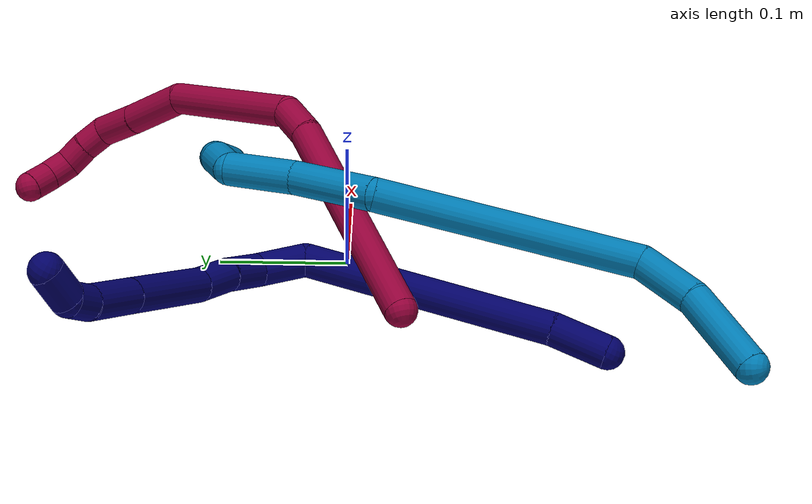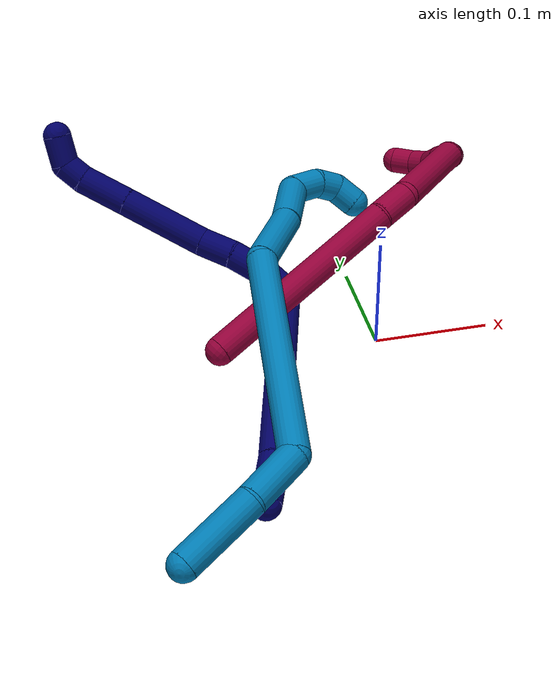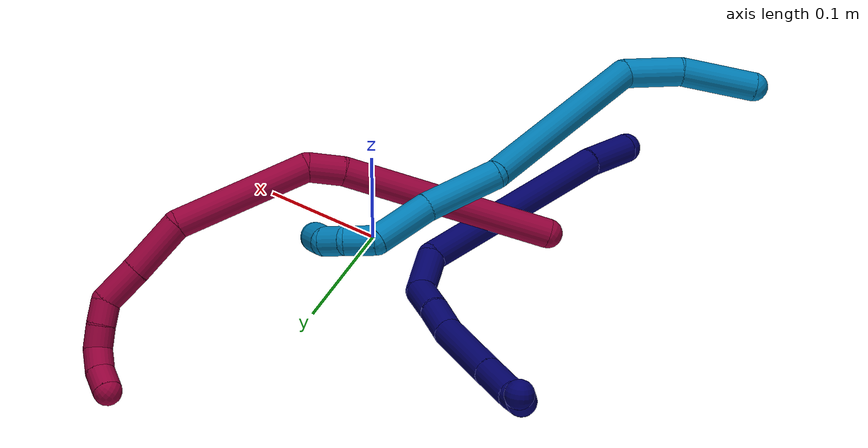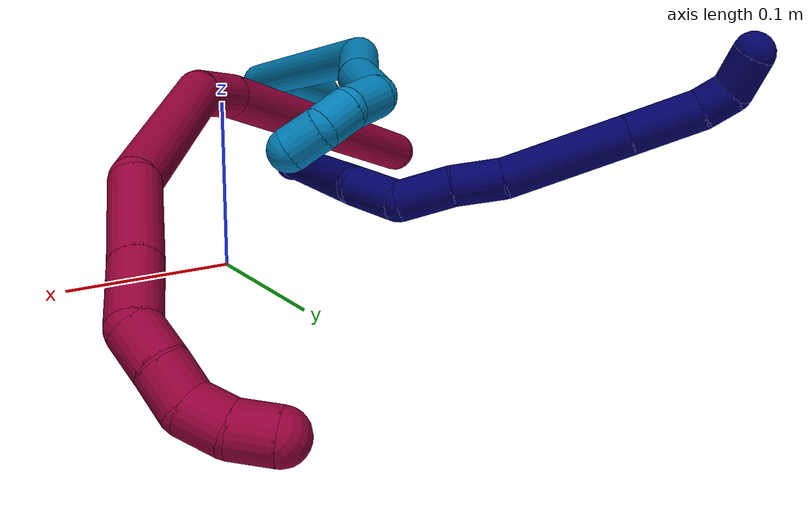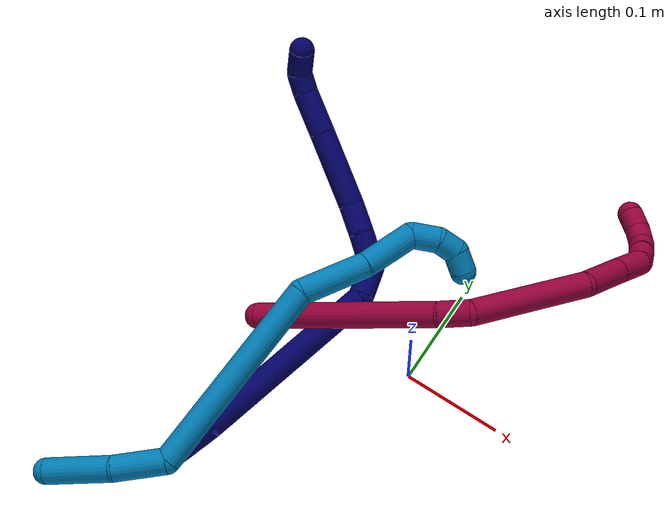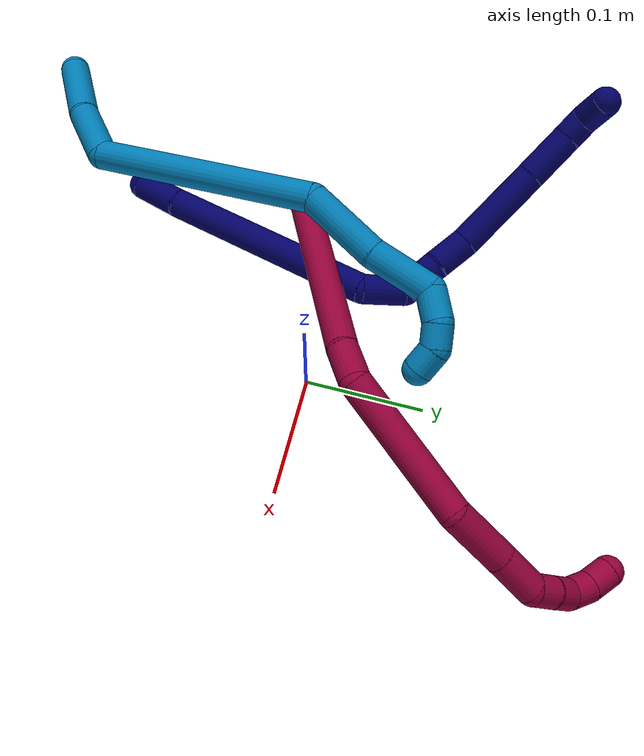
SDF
<sdf version="1.7">
 <world name="default">
  <model name="photoneo_s_sensor">
   <static>1</static>
   <pose>0 0 2 1.57079 1.57079 3.14159</pose>
   <link name="link">
    <inertial><mass>0.1</mass></inertial>
    <sensor name="sensor" type="depth">
     <update_rate>30</update_rate>
     <camera>
      <horizontal_fov>1.22</horizontal_fov>
      <image><width>1920</width><height>1200</height><format>B8G8R8</format></image>
      <clip><near>0.1</near><far>4</far></clip>
      <depth_camera><output>points</output></depth_camera>
     </camera>
     <plugin name="camera_plugin" filename="libgazebo_ros_depth_camera.so">
      <baseline>0.2</baseline>
      <alwaysOn>1</alwaysOn>
      <updateRate>0.0</updateRate>
      <cameraName>camera_ir</cameraName>
      <imageTopicName>/camera/color/image_raw</imageTopicName>
      <cameraInfoTopicName>/camera/color/camera_info</cameraInfoTopicName>
      <depthImageTopicName>/camera/depth/image_raw</depthImageTopicName>
      <depthImageCameraInfoTopicName>/camera/depth/camera_info</depthImageCameraInfoTopicName>
      <pointCloudTopicName>/camera/depth/points</pointCloudTopicName>
      <frameName>fr_optical</frameName>
      <pointCloudCutoff>0.1</pointCloudCutoff>
      <pointCloudCutoffMax>2.0</pointCloudCutoffMax>
      <distortionK1>0</distortionK1>
      <distortionK2>0</distortionK2>
      <distortionK3>0</distortionK3>
      <distortionT1>0</distortionT1>
      <distortionT2>0</distortionT2>
      <CxPrime>0</CxPrime>
      <Cx>0</Cx>
      <Cy>0</Cy>
      <focalLength>0</focalLength>
      <hackBaseline>0</hackBaseline>
     </plugin>
    </sensor>
   </link>
  </model>
  <model name="bin">
   <static>1</static>
   <link name="bottom">
    <collision name="collision-bottom">
     <pose>0 0 -0.01 0 -0 0</pose>
     <geometry><box><size>0.8 0.6 0.02</size></box></geometry>
     <surface>
      <friction><ode><mu>100</mu><mu2>100</mu2></ode></friction>
      <contact><collide_bitmask>65535</collide_bitmask></contact>
     </surface>
    </collision>
   </link>
   <link name="west_wall">
    <collision name="collision-west_wall">
     <pose>-0.41 0 0.1 0 -0 0</pose>
     <geometry><box><size>0.02 0.6 0.2</size></box></geometry>
     <surface>
      <friction><ode><mu>100</mu><mu2>100</mu2></ode></friction>
      <contact><collide_bitmask>65535</collide_bitmask></contact>
     </surface>
    </collision>
   </link>
   <link name="east_wall">
    <collision name="collision-east_wall">
     <pose>0.41 0 0.1 0 -0 0</pose>
     <geometry><box><size>0.02 0.6 0.2</size></box></geometry>
     <surface>
      <friction><ode><mu>100</mu><mu2>100</mu2></ode></friction>
      <contact><collide_bitmask>65535</collide_bitmask></contact>
     </surface>
    </collision>
   </link>
   <link name="south_wall">
    <collision name="collision-south_wall">
     <pose>0 -0.31 0.1 0 -0 0</pose>
     <geometry><box><size>0.8 0.02 0.2</size></box></geometry>
     <surface>
      <friction><ode><mu>100</mu><mu2>100</mu2></ode></friction>
      <contact><collide_bitmask>65535</collide_bitmask></contact>
     </surface>
    </collision>
   </link>
   <link name="north_wall">
    <collision name="collision-north_wall">
     <pose>0 0.31 0.1 0 -0 0</pose>
     <geometry><box><size>0.8 0.02 0.2</size></box></geometry>
     <surface>
      <friction><ode><mu>100</mu><mu2>100</mu2></ode></friction>
      <contact><collide_bitmask>65535</collide_bitmask></contact>
     </surface>
    </collision>
   </link>
  </model>
  <model name="7">
   <static>0</static>
   <link name="7">
    <collision name="collision-cylinder-e_1_1_4">
     <pose>0.004671 0.020482 -0.003588 -1.74421 0.220973 -0.262603</pose>
     <geometry><cylinder><radius>0.0125</radius><length>0.042625</length></cylinder></geometry>
     <surface>
      <friction><ode><mu>1.16</mu><mu2>1.16</mu2><slip1>0</slip1><slip2>0</slip2></ode></friction>
      <contact><ode><kp>1e+06</kp><kd>1</kd><max_vel>0</max_vel><min_depth>0.001</min_depth></ode></contact>
     </surface>
    </collision>
    <visual name="visual-cylinder-e_1_1_4">
     <pose>0.004671 0.020482 -0.003588 -1.74421 0.220973 -0.262603</pose>
     <geometry><cylinder><radius>0.0125</radius><length>0.042625</length></cylinder></geometry>
     <material><ambient>0.003922 0 0.403922 1</ambient></material>
    </visual>
    <collision name="collision-cylinder-e_2_4_5">
     <pose>0.024322 0.130298 -0.034326 -1.86584 0.159078 -0.214239</pose>
     <geometry><cylinder><radius>0.0125</radius><length>0.189124</length></cylinder></geometry>
     <surface>
      <friction><ode><mu>1.16</mu><mu2>1.16</mu2><slip1>0</slip1><slip2>0</slip2></ode></friction>
      <contact><ode><kp>1e+06</kp><kd>1</kd><max_vel>0</max_vel><min_depth>0.001</min_depth></ode></contact>
     </surface>
    </collision>
    <visual name="visual-cylinder-e_2_4_5">
     <pose>0.024322 0.130298 -0.034326 -1.86584 0.159078 -0.214239</pose>
     <geometry><cylinder><radius>0.0125</radius><length>0.189124</length></cylinder></geometry>
     <material><ambient>0.003922 0 0.403922 1</ambient></material>
    </visual>
    <collision name="collision-cylinder-e_3_5_6">
     <pose>0.033658 0.233291 -0.071971 -2.22592 -0.316595 0.626582</pose>
     <geometry><cylinder><radius>0.0125</radius><length>0.036253</length></cylinder></geometry>
     <surface>
      <friction><ode><mu>1.16</mu><mu2>1.16</mu2><slip1>0</slip1><slip2>0</slip2></ode></friction>
      <contact><ode><kp>1e+06</kp><kd>1</kd><max_vel>0</max_vel><min_depth>0.001</min_depth></ode></contact>
     </surface>
    </collision>
    <visual name="visual-cylinder-e_3_5_6">
     <pose>0.033658 0.233291 -0.071971 -2.22592 -0.316595 0.626582</pose>
     <geometry><cylinder><radius>0.0125</radius><length>0.036253</length></cylinder></geometry>
     <material><ambient>0.003922 0 0.403922 1</ambient></material>
    </visual>
    <collision name="collision-cylinder-e_4_6_7">
     <pose>0.013726 0.255806 -0.084741 -1.82235 -1.00154 1.22914</pose>
     <geometry><cylinder><radius>0.0125</radius><length>0.033929</length></cylinder></geometry>
     <surface>
      <friction><ode><mu>1.16</mu><mu2>1.16</mu2><slip1>0</slip1><slip2>0</slip2></ode></friction>
      <contact><ode><kp>1e+06</kp><kd>1</kd><max_vel>0</max_vel><min_depth>0.001</min_depth></ode></contact>
     </surface>
    </collision>
    <visual name="visual-cylinder-e_4_6_7">
     <pose>0.013726 0.255806 -0.084741 -1.82235 -1.00154 1.22914</pose>
     <geometry><cylinder><radius>0.0125</radius><length>0.033929</length></cylinder></geometry>
     <material><ambient>0.003922 0 0.403922 1</ambient></material>
    </visual>
    <collision name="collision-cylinder-e_5_7_8">
     <pose>-0.01355 0.271775 -0.091033 -2.08475 -1.00933 1.5155</pose>
     <geometry><cylinder><radius>0.0125</radius><length>0.030682</length></cylinder></geometry>
     <surface>
      <friction><ode><mu>1.16</mu><mu2>1.16</mu2><slip1>0</slip1><slip2>0</slip2></ode></friction>
      <contact><ode><kp>1e+06</kp><kd>1</kd><max_vel>0</max_vel><min_depth>0.001</min_depth></ode></contact>
     </surface>
    </collision>
    <visual name="visual-cylinder-e_5_7_8">
     <pose>-0.01355 0.271775 -0.091033 -2.08475 -1.00933 1.5155</pose>
     <geometry><cylinder><radius>0.0125</radius><length>0.030682</length></cylinder></geometry>
     <material><ambient>0.003922 0 0.403922 1</ambient></material>
    </visual>
    <collision name="collision-cylinder-e_6_8_9">
     <pose>-0.060471 0.296566 -0.097745 -1.72214 -1.08581 1.22465</pose>
     <geometry><cylinder><radius>0.0125</radius><length>0.076718</length></cylinder></geometry>
     <surface>
      <friction><ode><mu>1.16</mu><mu2>1.16</mu2><slip1>0</slip1><slip2>0</slip2></ode></friction>
      <contact><ode><kp>1e+06</kp><kd>1</kd><max_vel>0</max_vel><min_depth>0.001</min_depth></ode></contact>
     </surface>
    </collision>
    <visual name="visual-cylinder-e_6_8_9">
     <pose>-0.060471 0.296566 -0.097745 -1.72214 -1.08581 1.22465</pose>
     <geometry><cylinder><radius>0.0125</radius><length>0.076718</length></cylinder></geometry>
     <material><ambient>0.003922 0 0.403922 1</ambient></material>
    </visual>
    <collision name="collision-cylinder-e_7_9_10">
     <pose>-0.113885 0.324196 -0.101925 -1.71889 -1.09401 1.23026</pose>
     <geometry><cylinder><radius>0.0125</radius><length>0.043847</length></cylinder></geometry>
     <surface>
      <friction><ode><mu>1.16</mu><mu2>1.16</mu2><slip1>0</slip1><slip2>0</slip2></ode></friction>
      <contact><ode><kp>1e+06</kp><kd>1</kd><max_vel>0</max_vel><min_depth>0.001</min_depth></ode></contact>
     </surface>
    </collision>
    <visual name="visual-cylinder-e_7_9_10">
     <pose>-0.113885 0.324196 -0.101925 -1.71889 -1.09401 1.23026</pose>
     <geometry><cylinder><radius>0.0125</radius><length>0.043847</length></cylinder></geometry>
     <material><ambient>0.003922 0 0.403922 1</ambient></material>
    </visual>
    <collision name="collision-cylinder-e_8_10_11">
     <pose>-0.141751 0.339744 -0.102219 -1.36114 -0.972081 0.80835</pose>
     <geometry><cylinder><radius>0.0125</radius><length>0.020308</length></cylinder></geometry>
     <surface>
      <friction><ode><mu>1.16</mu><mu2>1.16</mu2><slip1>0</slip1><slip2>0</slip2></ode></friction>
      <contact><ode><kp>1e+06</kp><kd>1</kd><max_vel>0</max_vel><min_depth>0.001</min_depth></ode></contact>
     </surface>
    </collision>
    <visual name="visual-cylinder-e_8_10_11">
     <pose>-0.141751 0.339744 -0.102219 -1.36114 -0.972081 0.80835</pose>
     <geometry><cylinder><radius>0.0125</radius><length>0.020308</length></cylinder></geometry>
     <material><ambient>0.003922 0 0.403922 1</ambient></material>
    </visual>
    <collision name="collision-cylinder-e_9_11_2">
     <pose>-0.155243 0.355269 -0.093876 -0.946523 -0.395237 0.204353</pose>
     <geometry><cylinder><radius>0.0125</radius><length>0.026515</length></cylinder></geometry>
     <surface>
      <friction><ode><mu>1.16</mu><mu2>1.16</mu2><slip1>0</slip1><slip2>0</slip2></ode></friction>
      <contact><ode><kp>1e+06</kp><kd>1</kd><max_vel>0</max_vel><min_depth>0.001</min_depth></ode></contact>
     </surface>
    </collision>
    <visual name="visual-cylinder-e_9_11_2">
     <pose>-0.155243 0.355269 -0.093876 -0.946523 -0.395237 0.204353</pose>
     <geometry><cylinder><radius>0.0125</radius><length>0.026515</length></cylinder></geometry>
     <material><ambient>0.003922 0 0.403922 1</ambient></material>
    </visual>
    <collision name="collision-sphere-2">
     <pose>-0.160348 0.365197 -0.086725 0 -0 0</pose>
     <geometry><sphere><radius>0.0125</radius></sphere></geometry>
     <surface>
      <friction><ode><mu>1.16</mu><mu2>1.16</mu2><slip1>0</slip1><slip2>0</slip2></ode></friction>
      <contact><ode><kp>1e+06</kp><kd>1</kd><max_vel>0</max_vel><min_depth>0.001</min_depth></ode></contact>
     </surface>
    </collision>
    <visual name="visual-sphere-2">
     <pose>-0.160348 0.365197 -0.086725 0 -0 0</pose>
     <geometry><sphere><radius>0.0125</radius></sphere></geometry>
     <material><ambient>0.003922 0 0.403922 1</ambient></material>
    </visual>
    <collision name="collision-sphere-11">
     <pose>-0.150139 0.345341 -0.101028 0 -0 0</pose>
     <geometry><sphere><radius>0.0125</radius></sphere></geometry>
     <surface>
      <friction><ode><mu>1.16</mu><mu2>1.16</mu2><slip1>0</slip1><slip2>0</slip2></ode></friction>
      <contact><ode><kp>1e+06</kp><kd>1</kd><max_vel>0</max_vel><min_depth>0.001</min_depth></ode></contact>
     </surface>
    </collision>
    <visual name="visual-sphere-11">
     <pose>-0.150139 0.345341 -0.101028 0 -0 0</pose>
     <geometry><sphere><radius>0.0125</radius></sphere></geometry>
     <material><ambient>0.003922 0 0.403922 1</ambient></material>
    </visual>
    <collision name="collision-sphere-10">
     <pose>-0.133363 0.334147 -0.10341 0 -0 0</pose>
     <geometry><sphere><radius>0.0125</radius></sphere></geometry>
     <surface>
      <friction><ode><mu>1.16</mu><mu2>1.16</mu2><slip1>0</slip1><slip2>0</slip2></ode></friction>
      <contact><ode><kp>1e+06</kp><kd>1</kd><max_vel>0</max_vel><min_depth>0.001</min_depth></ode></contact>
     </surface>
    </collision>
    <visual name="visual-sphere-10">
     <pose>-0.133363 0.334147 -0.10341 0 -0 0</pose>
     <geometry><sphere><radius>0.0125</radius></sphere></geometry>
     <material><ambient>0.003922 0 0.403922 1</ambient></material>
    </visual>
    <collision name="collision-sphere-9">
     <pose>-0.094406 0.314245 -0.100441 0 -0 0</pose>
     <geometry><sphere><radius>0.0125</radius></sphere></geometry>
     <surface>
      <friction><ode><mu>1.16</mu><mu2>1.16</mu2><slip1>0</slip1><slip2>0</slip2></ode></friction>
      <contact><ode><kp>1e+06</kp><kd>1</kd><max_vel>0</max_vel><min_depth>0.001</min_depth></ode></contact>
     </surface>
    </collision>
    <visual name="visual-sphere-9">
     <pose>-0.094406 0.314245 -0.100441 0 -0 0</pose>
     <geometry><sphere><radius>0.0125</radius></sphere></geometry>
     <material><ambient>0.003922 0 0.403922 1</ambient></material>
    </visual>
    <collision name="collision-sphere-4">
     <pose>0.009342 0.040965 -0.007176 0 -0 0</pose>
     <geometry><sphere><radius>0.0125</radius></sphere></geometry>
     <surface>
      <friction><ode><mu>1.16</mu><mu2>1.16</mu2><slip1>0</slip1><slip2>0</slip2></ode></friction>
      <contact><ode><kp>1e+06</kp><kd>1</kd><max_vel>0</max_vel><min_depth>0.001</min_depth></ode></contact>
     </surface>
    </collision>
    <visual name="visual-sphere-4">
     <pose>0.009342 0.040965 -0.007176 0 -0 0</pose>
     <geometry><sphere><radius>0.0125</radius></sphere></geometry>
     <material><ambient>0.003922 0 0.403922 1</ambient></material>
    </visual>
    <collision name="collision-sphere-1">
     <geometry><sphere><radius>0.0125</radius></sphere></geometry>
     <surface>
      <friction><ode><mu>1.16</mu><mu2>1.16</mu2><slip1>0</slip1><slip2>0</slip2></ode></friction>
      <contact><ode><kp>1e+06</kp><kd>1</kd><max_vel>0</max_vel><min_depth>0.001</min_depth></ode></contact>
     </surface>
    </collision>
    <visual name="visual-sphere-1">
     <geometry><sphere><radius>0.0125</radius></sphere></geometry>
     <material><ambient>0.003922 0 0.403922 1</ambient></material>
    </visual>
    <collision name="collision-sphere-8">
     <pose>-0.026535 0.278888 -0.095049 0 -0 0</pose>
     <geometry><sphere><radius>0.0125</radius></sphere></geometry>
     <surface>
      <friction><ode><mu>1.16</mu><mu2>1.16</mu2><slip1>0</slip1><slip2>0</slip2></ode></friction>
      <contact><ode><kp>1e+06</kp><kd>1</kd><max_vel>0</max_vel><min_depth>0.001</min_depth></ode></contact>
     </surface>
    </collision>
    <visual name="visual-sphere-8">
     <pose>-0.026535 0.278888 -0.095049 0 -0 0</pose>
     <geometry><sphere><radius>0.0125</radius></sphere></geometry>
     <material><ambient>0.003922 0 0.403922 1</ambient></material>
    </visual>
    <collision name="collision-sphere-5">
     <pose>0.039301 0.219632 -0.061476 0 -0 0</pose>
     <geometry><sphere><radius>0.0125</radius></sphere></geometry>
     <surface>
      <friction><ode><mu>1.16</mu><mu2>1.16</mu2><slip1>0</slip1><slip2>0</slip2></ode></friction>
      <contact><ode><kp>1e+06</kp><kd>1</kd><max_vel>0</max_vel><min_depth>0.001</min_depth></ode></contact>
     </surface>
    </collision>
    <visual name="visual-sphere-5">
     <pose>0.039301 0.219632 -0.061476 0 -0 0</pose>
     <geometry><sphere><radius>0.0125</radius></sphere></geometry>
     <material><ambient>0.003922 0 0.403922 1</ambient></material>
    </visual>
    <collision name="collision-sphere-6">
     <pose>0.028015 0.24695 -0.082465 0 -0 0</pose>
     <geometry><sphere><radius>0.0125</radius></sphere></geometry>
     <surface>
      <friction><ode><mu>1.16</mu><mu2>1.16</mu2><slip1>0</slip1><slip2>0</slip2></ode></friction>
      <contact><ode><kp>1e+06</kp><kd>1</kd><max_vel>0</max_vel><min_depth>0.001</min_depth></ode></contact>
     </surface>
    </collision>
    <visual name="visual-sphere-6">
     <pose>0.028015 0.24695 -0.082465 0 -0 0</pose>
     <geometry><sphere><radius>0.0125</radius></sphere></geometry>
     <material><ambient>0.003922 0 0.403922 1</ambient></material>
    </visual>
    <collision name="collision-sphere-7">
     <pose>-0.000564 0.264662 -0.087017 0 -0 0</pose>
     <geometry><sphere><radius>0.0125</radius></sphere></geometry>
     <surface>
      <friction><ode><mu>1.16</mu><mu2>1.16</mu2><slip1>0</slip1><slip2>0</slip2></ode></friction>
      <contact><ode><kp>1e+06</kp><kd>1</kd><max_vel>0</max_vel><min_depth>0.001</min_depth></ode></contact>
     </surface>
    </collision>
    <visual name="visual-sphere-7">
     <pose>-0.000564 0.264662 -0.087017 0 -0 0</pose>
     <geometry><sphere><radius>0.0125</radius></sphere></geometry>
     <material><ambient>0.003922 0 0.403922 1</ambient></material>
    </visual>
    <inertial>
     <pose>-0.021117 0.208554 -0.06291 0 -0 0</pose>
     <mass>0.5</mass>
     <inertia>
      <ixx>0.00047</ixx>
      <ixy>0</ixy>
      <ixz>0</ixz>
      <iyy>-0.000164</iyy>
      <iyz>0</iyz>
      <izz>-0.000625</izz>
     </inertia>
    </inertial>
   </link>
   <pose>-0.142093 -0.190328 0.011543 0.467158 0.229477 -0.087418</pose>
  </model>
  <model name="8">
   <static>0</static>
   <link name="8">
    <collision name="collision-cylinder-e_1_1_4">
     <pose>0.026918 0.021377 0.084486 -0.247823 0.299583 -0.03759</pose>
     <geometry><cylinder><radius>0.0125</radius><length>0.182421</length></cylinder></geometry>
     <surface>
      <friction><ode><mu>1.16</mu><mu2>1.16</mu2><slip1>0</slip1><slip2>0</slip2></ode></friction>
      <contact><ode><kp>1e+06</kp><kd>1</kd><max_vel>0</max_vel><min_depth>0.001</min_depth></ode></contact>
     </surface>
    </collision>
    <visual name="visual-cylinder-e_1_1_4">
     <pose>0.026918 0.021377 0.084486 -0.247823 0.299583 -0.03759</pose>
     <geometry><cylinder><radius>0.0125</radius><length>0.182421</length></cylinder></geometry>
     <material><ambient>0.584314 0 0.227451 1</ambient></material>
    </visual>
    <collision name="collision-cylinder-e_2_4_5">
     <pose>0.059588 0.048708 0.182176 -0.423636 0.378006 -0.082223</pose>
     <geometry><cylinder><radius>0.0125</radius><length>0.03117</length></cylinder></geometry>
     <surface>
      <friction><ode><mu>1.16</mu><mu2>1.16</mu2><slip1>0</slip1><slip2>0</slip2></ode></friction>
      <contact><ode><kp>1e+06</kp><kd>1</kd><max_vel>0</max_vel><min_depth>0.001</min_depth></ode></contact>
     </surface>
    </collision>
    <visual name="visual-cylinder-e_2_4_5">
     <pose>0.059588 0.048708 0.182176 -0.423636 0.378006 -0.082223</pose>
     <geometry><cylinder><radius>0.0125</radius><length>0.03117</length></cylinder></geometry>
     <material><ambient>0.584314 0 0.227451 1</ambient></material>
    </visual>
    <collision name="collision-cylinder-e_3_5_6">
     <pose>0.092624 0.098794 0.224035 -0.9949 0.478349 -0.263279</pose>
     <geometry><cylinder><radius>0.0125</radius><length>0.118542</length></cylinder></geometry>
     <surface>
      <friction><ode><mu>1.16</mu><mu2>1.16</mu2><slip1>0</slip1><slip2>0</slip2></ode></friction>
      <contact><ode><kp>1e+06</kp><kd>1</kd><max_vel>0</max_vel><min_depth>0.001</min_depth></ode></contact>
     </surface>
    </collision>
    <visual name="visual-cylinder-e_3_5_6">
     <pose>0.092624 0.098794 0.224035 -0.9949 0.478349 -0.263279</pose>
     <geometry><cylinder><radius>0.0125</radius><length>0.118542</length></cylinder></geometry>
     <material><ambient>0.584314 0 0.227451 1</ambient></material>
    </visual>
    <collision name="collision-cylinder-e_4_6_7">
     <pose>0.132493 0.165078 0.254323 -1.49721 0.515506 -0.480345</pose>
     <geometry><cylinder><radius>0.0125</radius><length>0.051062</length></cylinder></geometry>
     <surface>
      <friction><ode><mu>1.16</mu><mu2>1.16</mu2><slip1>0</slip1><slip2>0</slip2></ode></friction>
      <contact><ode><kp>1e+06</kp><kd>1</kd><max_vel>0</max_vel><min_depth>0.001</min_depth></ode></contact>
     </surface>
    </collision>
    <visual name="visual-cylinder-e_4_6_7">
     <pose>0.132493 0.165078 0.254323 -1.49721 0.515506 -0.480345</pose>
     <geometry><cylinder><radius>0.0125</radius><length>0.051062</length></cylinder></geometry>
     <material><ambient>0.584314 0 0.227451 1</ambient></material>
    </visual>
    <collision name="collision-cylinder-e_5_7_8">
     <pose>0.153927 0.202598 0.257825 -1.44977 0.519223 -0.462116</pose>
     <geometry><cylinder><radius>0.0125</radius><length>0.035661</length></cylinder></geometry>
     <surface>
      <friction><ode><mu>1.16</mu><mu2>1.16</mu2><slip1>0</slip1><slip2>0</slip2></ode></friction>
      <contact><ode><kp>1e+06</kp><kd>1</kd><max_vel>0</max_vel><min_depth>0.001</min_depth></ode></contact>
     </surface>
    </collision>
    <visual name="visual-cylinder-e_5_7_8">
     <pose>0.153927 0.202598 0.257825 -1.44977 0.519223 -0.462116</pose>
     <geometry><cylinder><radius>0.0125</radius><length>0.035661</length></cylinder></geometry>
     <material><ambient>0.584314 0 0.227451 1</ambient></material>
    </visual>
    <collision name="collision-cylinder-e_6_8_9">
     <pose>0.16453 0.227483 0.255877 -1.95222 0.169574 -0.250007</pose>
     <geometry><cylinder><radius>0.0125</radius><length>0.020809</length></cylinder></geometry>
     <surface>
      <friction><ode><mu>1.16</mu><mu2>1.16</mu2><slip1>0</slip1><slip2>0</slip2></ode></friction>
      <contact><ode><kp>1e+06</kp><kd>1</kd><max_vel>0</max_vel><min_depth>0.001</min_depth></ode></contact>
     </surface>
    </collision>
    <visual name="visual-cylinder-e_6_8_9">
     <pose>0.16453 0.227483 0.255877 -1.95222 0.169574 -0.250007</pose>
     <geometry><cylinder><radius>0.0125</radius><length>0.020809</length></cylinder></geometry>
     <material><ambient>0.584314 0 0.227451 1</ambient></material>
    </visual>
    <collision name="collision-cylinder-e_7_9_10">
     <pose>0.168535 0.245611 0.247395 -2.06725 0.225757 -0.376165</pose>
     <geometry><cylinder><radius>0.0125</radius><length>0.020093</length></cylinder></geometry>
     <surface>
      <friction><ode><mu>1.16</mu><mu2>1.16</mu2><slip1>0</slip1><slip2>0</slip2></ode></friction>
      <contact><ode><kp>1e+06</kp><kd>1</kd><max_vel>0</max_vel><min_depth>0.001</min_depth></ode></contact>
     </surface>
    </collision>
    <visual name="visual-cylinder-e_7_9_10">
     <pose>0.168535 0.245611 0.247395 -2.06725 0.225757 -0.376165</pose>
     <geometry><cylinder><radius>0.0125</radius><length>0.020093</length></cylinder></geometry>
     <material><ambient>0.584314 0 0.227451 1</ambient></material>
    </visual>
    <collision name="collision-cylinder-e_8_10_11">
     <pose>0.168198 0.26277 0.238168 -2.06109 -0.260756 0.430468</pose>
     <geometry><cylinder><radius>0.0125</radius><length>0.02006</length></cylinder></geometry>
     <surface>
      <friction><ode><mu>1.16</mu><mu2>1.16</mu2><slip1>0</slip1><slip2>0</slip2></ode></friction>
      <contact><ode><kp>1e+06</kp><kd>1</kd><max_vel>0</max_vel><min_depth>0.001</min_depth></ode></contact>
     </surface>
    </collision>
    <visual name="visual-cylinder-e_8_10_11">
     <pose>0.168198 0.26277 0.238168 -2.06109 -0.260756 0.430468</pose>
     <geometry><cylinder><radius>0.0125</radius><length>0.02006</length></cylinder></geometry>
     <material><ambient>0.584314 0 0.227451 1</ambient></material>
    </visual>
    <collision name="collision-cylinder-e_9_11_2">
     <pose>0.16027 0.278453 0.228871 -2.15661 -0.557864 0.980541</pose>
     <geometry><cylinder><radius>0.0125</radius><length>0.020181</length></cylinder></geometry>
     <surface>
      <friction><ode><mu>1.16</mu><mu2>1.16</mu2><slip1>0</slip1><slip2>0</slip2></ode></friction>
      <contact><ode><kp>1e+06</kp><kd>1</kd><max_vel>0</max_vel><min_depth>0.001</min_depth></ode></contact>
     </surface>
    </collision>
    <visual name="visual-cylinder-e_9_11_2">
     <pose>0.16027 0.278453 0.228871 -2.15661 -0.557864 0.980541</pose>
     <geometry><cylinder><radius>0.0125</radius><length>0.020181</length></cylinder></geometry>
     <material><ambient>0.584314 0 0.227451 1</ambient></material>
    </visual>
    <collision name="collision-sphere-2">
     <pose>0.154929 0.285586 0.224138 0 -0 0</pose>
     <geometry><sphere><radius>0.0125</radius></sphere></geometry>
     <surface>
      <friction><ode><mu>1.16</mu><mu2>1.16</mu2><slip1>0</slip1><slip2>0</slip2></ode></friction>
      <contact><ode><kp>1e+06</kp><kd>1</kd><max_vel>0</max_vel><min_depth>0.001</min_depth></ode></contact>
     </surface>
    </collision>
    <visual name="visual-sphere-2">
     <pose>0.154929 0.285586 0.224138 0 -0 0</pose>
     <geometry><sphere><radius>0.0125</radius></sphere></geometry>
     <material><ambient>0.584314 0 0.227451 1</ambient></material>
    </visual>
    <collision name="collision-sphere-11">
     <pose>0.165612 0.27132 0.233605 0 -0 0</pose>
     <geometry><sphere><radius>0.0125</radius></sphere></geometry>
     <surface>
      <friction><ode><mu>1.16</mu><mu2>1.16</mu2><slip1>0</slip1><slip2>0</slip2></ode></friction>
      <contact><ode><kp>1e+06</kp><kd>1</kd><max_vel>0</max_vel><min_depth>0.001</min_depth></ode></contact>
     </surface>
    </collision>
    <visual name="visual-sphere-11">
     <pose>0.165612 0.27132 0.233605 0 -0 0</pose>
     <geometry><sphere><radius>0.0125</radius></sphere></geometry>
     <material><ambient>0.584314 0 0.227451 1</ambient></material>
    </visual>
    <collision name="collision-sphere-10">
     <pose>0.170784 0.254221 0.242731 0 -0 0</pose>
     <geometry><sphere><radius>0.0125</radius></sphere></geometry>
     <surface>
      <friction><ode><mu>1.16</mu><mu2>1.16</mu2><slip1>0</slip1><slip2>0</slip2></ode></friction>
      <contact><ode><kp>1e+06</kp><kd>1</kd><max_vel>0</max_vel><min_depth>0.001</min_depth></ode></contact>
     </surface>
    </collision>
    <visual name="visual-sphere-10">
     <pose>0.170784 0.254221 0.242731 0 -0 0</pose>
     <geometry><sphere><radius>0.0125</radius></sphere></geometry>
     <material><ambient>0.584314 0 0.227451 1</ambient></material>
    </visual>
    <collision name="collision-sphere-9">
     <pose>0.166286 0.237002 0.252059 0 -0 0</pose>
     <geometry><sphere><radius>0.0125</radius></sphere></geometry>
     <surface>
      <friction><ode><mu>1.16</mu><mu2>1.16</mu2><slip1>0</slip1><slip2>0</slip2></ode></friction>
      <contact><ode><kp>1e+06</kp><kd>1</kd><max_vel>0</max_vel><min_depth>0.001</min_depth></ode></contact>
     </surface>
    </collision>
    <visual name="visual-sphere-9">
     <pose>0.166286 0.237002 0.252059 0 -0 0</pose>
     <geometry><sphere><radius>0.0125</radius></sphere></geometry>
     <material><ambient>0.584314 0 0.227451 1</ambient></material>
    </visual>
    <collision name="collision-sphere-4">
     <pose>0.053837 0.042754 0.168971 0 -0 0</pose>
     <geometry><sphere><radius>0.0125</radius></sphere></geometry>
     <surface>
      <friction><ode><mu>1.16</mu><mu2>1.16</mu2><slip1>0</slip1><slip2>0</slip2></ode></friction>
      <contact><ode><kp>1e+06</kp><kd>1</kd><max_vel>0</max_vel><min_depth>0.001</min_depth></ode></contact>
     </surface>
    </collision>
    <visual name="visual-sphere-4">
     <pose>0.053837 0.042754 0.168971 0 -0 0</pose>
     <geometry><sphere><radius>0.0125</radius></sphere></geometry>
     <material><ambient>0.584314 0 0.227451 1</ambient></material>
    </visual>
    <collision name="collision-sphere-1">
     <geometry><sphere><radius>0.0125</radius></sphere></geometry>
     <surface>
      <friction><ode><mu>1.16</mu><mu2>1.16</mu2><slip1>0</slip1><slip2>0</slip2></ode></friction>
      <contact><ode><kp>1e+06</kp><kd>1</kd><max_vel>0</max_vel><min_depth>0.001</min_depth></ode></contact>
     </surface>
    </collision>
    <visual name="visual-sphere-1">
     <geometry><sphere><radius>0.0125</radius></sphere></geometry>
     <material><ambient>0.584314 0 0.227451 1</ambient></material>
    </visual>
    <collision name="collision-sphere-8">
     <pose>0.162774 0.217965 0.259694 0 -0 0</pose>
     <geometry><sphere><radius>0.0125</radius></sphere></geometry>
     <surface>
      <friction><ode><mu>1.16</mu><mu2>1.16</mu2><slip1>0</slip1><slip2>0</slip2></ode></friction>
      <contact><ode><kp>1e+06</kp><kd>1</kd><max_vel>0</max_vel><min_depth>0.001</min_depth></ode></contact>
     </surface>
    </collision>
    <visual name="visual-sphere-8">
     <pose>0.162774 0.217965 0.259694 0 -0 0</pose>
     <geometry><sphere><radius>0.0125</radius></sphere></geometry>
     <material><ambient>0.584314 0 0.227451 1</ambient></material>
    </visual>
    <collision name="collision-sphere-5">
     <pose>0.06534 0.054663 0.19538 0 -0 0</pose>
     <geometry><sphere><radius>0.0125</radius></sphere></geometry>
     <surface>
      <friction><ode><mu>1.16</mu><mu2>1.16</mu2><slip1>0</slip1><slip2>0</slip2></ode></friction>
      <contact><ode><kp>1e+06</kp><kd>1</kd><max_vel>0</max_vel><min_depth>0.001</min_depth></ode></contact>
     </surface>
    </collision>
    <visual name="visual-sphere-5">
     <pose>0.06534 0.054663 0.19538 0 -0 0</pose>
     <geometry><sphere><radius>0.0125</radius></sphere></geometry>
     <material><ambient>0.584314 0 0.227451 1</ambient></material>
    </visual>
    <collision name="collision-sphere-6">
     <pose>0.119907 0.142925 0.25269 0 -0 0</pose>
     <geometry><sphere><radius>0.0125</radius></sphere></geometry>
     <surface>
      <friction><ode><mu>1.16</mu><mu2>1.16</mu2><slip1>0</slip1><slip2>0</slip2></ode></friction>
      <contact><ode><kp>1e+06</kp><kd>1</kd><max_vel>0</max_vel><min_depth>0.001</min_depth></ode></contact>
     </surface>
    </collision>
    <visual name="visual-sphere-6">
     <pose>0.119907 0.142925 0.25269 0 -0 0</pose>
     <geometry><sphere><radius>0.0125</radius></sphere></geometry>
     <material><ambient>0.584314 0 0.227451 1</ambient></material>
    </visual>
    <collision name="collision-sphere-7">
     <pose>0.145079 0.18723 0.255956 0 -0 0</pose>
     <geometry><sphere><radius>0.0125</radius></sphere></geometry>
     <surface>
      <friction><ode><mu>1.16</mu><mu2>1.16</mu2><slip1>0</slip1><slip2>0</slip2></ode></friction>
      <contact><ode><kp>1e+06</kp><kd>1</kd><max_vel>0</max_vel><min_depth>0.001</min_depth></ode></contact>
     </surface>
    </collision>
    <visual name="visual-sphere-7">
     <pose>0.145079 0.18723 0.255956 0 -0 0</pose>
     <geometry><sphere><radius>0.0125</radius></sphere></geometry>
     <material><ambient>0.584314 0 0.227451 1</ambient></material>
    </visual>
    <inertial>
     <pose>0.086842 0.106685 0.179041 0 -0 0</pose>
     <mass>0.5</mass>
     <inertia>
      <ixx>0.000589</ixx>
      <ixy>0</ixy>
      <ixz>0</ixz>
      <iyy>0.00056</iyy>
      <iyz>0</iyz>
      <izz>-0.000459</izz>
     </inertia>
    </inertial>
   </link>
   <pose>-0.146543 -0.042135 0.047038 -0.354115 0.796283 -0.169547</pose>
  </model>
  <model name="9">
   <static>0</static>
   <link name="9">
    <collision name="collision-cylinder-e_1_1_4">
     <pose>0.02243 0.010216 -0.022396 -2.71364 0.738965 -2.11891</pose>
     <geometry><cylinder><radius>0.0125</radius><length>0.066605</length></cylinder></geometry>
     <surface>
      <friction><ode><mu>1.16</mu><mu2>1.16</mu2><slip1>0</slip1><slip2>0</slip2></ode></friction>
      <contact><ode><kp>1e+06</kp><kd>1</kd><max_vel>0</max_vel><min_depth>0.001</min_depth></ode></contact>
     </surface>
    </collision>
    <visual name="visual-cylinder-e_1_1_4">
     <pose>0.02243 0.010216 -0.022396 -2.71364 0.738965 -2.11891</pose>
     <geometry><cylinder><radius>0.0125</radius><length>0.066605</length></cylinder></geometry>
     <material><ambient>0 0.490196 0.709804 1</ambient></material>
    </visual>
    <collision name="collision-cylinder-e_2_4_5">
     <pose>0.058217 0.025762 -0.065724 -2.89226 0.553842 -2.31105</pose>
     <geometry><cylinder><radius>0.0125</radius><length>0.050793</length></cylinder></geometry>
     <surface>
      <friction><ode><mu>1.16</mu><mu2>1.16</mu2><slip1>0</slip1><slip2>0</slip2></ode></friction>
      <contact><ode><kp>1e+06</kp><kd>1</kd><max_vel>0</max_vel><min_depth>0.001</min_depth></ode></contact>
     </surface>
    </collision>
    <visual name="visual-cylinder-e_2_4_5">
     <pose>0.058217 0.025762 -0.065724 -2.89226 0.553842 -2.31105</pose>
     <geometry><cylinder><radius>0.0125</radius><length>0.050793</length></cylinder></geometry>
     <material><ambient>0 0.490196 0.709804 1</ambient></material>
    </visual>
    <collision name="collision-cylinder-e_3_5_6">
     <pose>0.055402 0.081191 -0.168814 -2.594 -0.166514 0.577653</pose>
     <geometry><cylinder><radius>0.0125</radius><length>0.195155</length></cylinder></geometry>
     <surface>
      <friction><ode><mu>1.16</mu><mu2>1.16</mu2><slip1>0</slip1><slip2>0</slip2></ode></friction>
      <contact><ode><kp>1e+06</kp><kd>1</kd><max_vel>0</max_vel><min_depth>0.001</min_depth></ode></contact>
     </surface>
    </collision>
    <visual name="visual-cylinder-e_3_5_6">
     <pose>0.055402 0.081191 -0.168814 -2.594 -0.166514 0.577653</pose>
     <geometry><cylinder><radius>0.0125</radius><length>0.195155</length></cylinder></geometry>
     <material><ambient>0 0.490196 0.709804 1</ambient></material>
    </visual>
    <collision name="collision-cylinder-e_4_6_7">
     <pose>0.044686 0.13628 -0.283397 -2.98892 0.16484 -1.64771</pose>
     <geometry><cylinder><radius>0.0125</radius><length>0.066516</length></cylinder></geometry>
     <surface>
      <friction><ode><mu>1.16</mu><mu2>1.16</mu2><slip1>0</slip1><slip2>0</slip2></ode></friction>
      <contact><ode><kp>1e+06</kp><kd>1</kd><max_vel>0</max_vel><min_depth>0.001</min_depth></ode></contact>
     </surface>
    </collision>
    <visual name="visual-cylinder-e_4_6_7">
     <pose>0.044686 0.13628 -0.283397 -2.98892 0.16484 -1.64771</pose>
     <geometry><cylinder><radius>0.0125</radius><length>0.066516</length></cylinder></geometry>
     <material><ambient>0 0.490196 0.709804 1</ambient></material>
    </visual>
    <collision name="collision-cylinder-e_5_7_8">
     <pose>0.050072 0.147221 -0.341833 -2.91665 -0.002688 0.023795</pose>
     <geometry><cylinder><radius>0.0125</radius><length>0.053366</length></cylinder></geometry>
     <surface>
      <friction><ode><mu>1.16</mu><mu2>1.16</mu2><slip1>0</slip1><slip2>0</slip2></ode></friction>
      <contact><ode><kp>1e+06</kp><kd>1</kd><max_vel>0</max_vel><min_depth>0.001</min_depth></ode></contact>
     </surface>
    </collision>
    <visual name="visual-cylinder-e_5_7_8">
     <pose>0.050072 0.147221 -0.341833 -2.91665 -0.002688 0.023795</pose>
     <geometry><cylinder><radius>0.0125</radius><length>0.053366</length></cylinder></geometry>
     <material><ambient>0 0.490196 0.709804 1</ambient></material>
    </visual>
    <collision name="collision-cylinder-e_6_8_9">
     <pose>0.058635 0.151783 -0.37784 3.00346 0.70774 2.77136</pose>
     <geometry><cylinder><radius>0.0125</radius><length>0.026564</length></cylinder></geometry>
     <surface>
      <friction><ode><mu>1.16</mu><mu2>1.16</mu2><slip1>0</slip1><slip2>0</slip2></ode></friction>
      <contact><ode><kp>1e+06</kp><kd>1</kd><max_vel>0</max_vel><min_depth>0.001</min_depth></ode></contact>
     </surface>
    </collision>
    <visual name="visual-cylinder-e_6_8_9">
     <pose>0.058635 0.151783 -0.37784 3.00346 0.70774 2.77136</pose>
     <geometry><cylinder><radius>0.0125</radius><length>0.026564</length></cylinder></geometry>
     <material><ambient>0 0.490196 0.709804 1</ambient></material>
    </visual>
    <collision name="collision-cylinder-e_7_9_10">
     <pose>0.073854 0.145391 -0.393574 2.42463 0.71307 1.56486</pose>
     <geometry><cylinder><radius>0.0125</radius><length>0.020129</length></cylinder></geometry>
     <surface>
      <friction><ode><mu>1.16</mu><mu2>1.16</mu2><slip1>0</slip1><slip2>0</slip2></ode></friction>
      <contact><ode><kp>1e+06</kp><kd>1</kd><max_vel>0</max_vel><min_depth>0.001</min_depth></ode></contact>
     </surface>
    </collision>
    <visual name="visual-cylinder-e_7_9_10">
     <pose>0.073854 0.145391 -0.393574 2.42463 0.71307 1.56486</pose>
     <geometry><cylinder><radius>0.0125</radius><length>0.020129</length></cylinder></geometry>
     <material><ambient>0 0.490196 0.709804 1</ambient></material>
    </visual>
    <collision name="collision-cylinder-e_8_10_2">
     <pose>0.087011 0.132289 -0.399629 1.60987 0.681408 0.706402</pose>
     <geometry><cylinder><radius>0.0125</radius><length>0.020872</length></cylinder></geometry>
     <surface>
      <friction><ode><mu>1.16</mu><mu2>1.16</mu2><slip1>0</slip1><slip2>0</slip2></ode></friction>
      <contact><ode><kp>1e+06</kp><kd>1</kd><max_vel>0</max_vel><min_depth>0.001</min_depth></ode></contact>
     </surface>
    </collision>
    <visual name="visual-cylinder-e_8_10_2">
     <pose>0.087011 0.132289 -0.399629 1.60987 0.681408 0.706402</pose>
     <geometry><cylinder><radius>0.0125</radius><length>0.020872</length></cylinder></geometry>
     <material><ambient>0 0.490196 0.709804 1</ambient></material>
    </visual>
    <collision name="collision-sphere-2">
     <pose>0.093585 0.12419 -0.399945 0 -0 0</pose>
     <geometry><sphere><radius>0.0125</radius></sphere></geometry>
     <surface>
      <friction><ode><mu>1.16</mu><mu2>1.16</mu2><slip1>0</slip1><slip2>0</slip2></ode></friction>
      <contact><ode><kp>1e+06</kp><kd>1</kd><max_vel>0</max_vel><min_depth>0.001</min_depth></ode></contact>
     </surface>
    </collision>
    <visual name="visual-sphere-2">
     <pose>0.093585 0.12419 -0.399945 0 -0 0</pose>
     <geometry><sphere><radius>0.0125</radius></sphere></geometry>
     <material><ambient>0 0.490196 0.709804 1</ambient></material>
    </visual>
    <collision name="collision-sphere-10">
     <pose>0.080438 0.140389 -0.399312 0 -0 0</pose>
     <geometry><sphere><radius>0.0125</radius></sphere></geometry>
     <surface>
      <friction><ode><mu>1.16</mu><mu2>1.16</mu2><slip1>0</slip1><slip2>0</slip2></ode></friction>
      <contact><ode><kp>1e+06</kp><kd>1</kd><max_vel>0</max_vel><min_depth>0.001</min_depth></ode></contact>
     </surface>
    </collision>
    <visual name="visual-sphere-10">
     <pose>0.080438 0.140389 -0.399312 0 -0 0</pose>
     <geometry><sphere><radius>0.0125</radius></sphere></geometry>
     <material><ambient>0 0.490196 0.709804 1</ambient></material>
    </visual>
    <collision name="collision-sphere-9">
     <pose>0.06727 0.150393 -0.387835 0 -0 0</pose>
     <geometry><sphere><radius>0.0125</radius></sphere></geometry>
     <surface>
      <friction><ode><mu>1.16</mu><mu2>1.16</mu2><slip1>0</slip1><slip2>0</slip2></ode></friction>
      <contact><ode><kp>1e+06</kp><kd>1</kd><max_vel>0</max_vel><min_depth>0.001</min_depth></ode></contact>
     </surface>
    </collision>
    <visual name="visual-sphere-9">
     <pose>0.06727 0.150393 -0.387835 0 -0 0</pose>
     <geometry><sphere><radius>0.0125</radius></sphere></geometry>
     <material><ambient>0 0.490196 0.709804 1</ambient></material>
    </visual>
    <collision name="collision-sphere-4">
     <pose>0.04486 0.020432 -0.044792 0 -0 0</pose>
     <geometry><sphere><radius>0.0125</radius></sphere></geometry>
     <surface>
      <friction><ode><mu>1.16</mu><mu2>1.16</mu2><slip1>0</slip1><slip2>0</slip2></ode></friction>
      <contact><ode><kp>1e+06</kp><kd>1</kd><max_vel>0</max_vel><min_depth>0.001</min_depth></ode></contact>
     </surface>
    </collision>
    <visual name="visual-sphere-4">
     <pose>0.04486 0.020432 -0.044792 0 -0 0</pose>
     <geometry><sphere><radius>0.0125</radius></sphere></geometry>
     <material><ambient>0 0.490196 0.709804 1</ambient></material>
    </visual>
    <collision name="collision-sphere-1">
     <geometry><sphere><radius>0.0125</radius></sphere></geometry>
     <surface>
      <friction><ode><mu>1.16</mu><mu2>1.16</mu2><slip1>0</slip1><slip2>0</slip2></ode></friction>
      <contact><ode><kp>1e+06</kp><kd>1</kd><max_vel>0</max_vel><min_depth>0.001</min_depth></ode></contact>
     </surface>
    </collision>
    <visual name="visual-sphere-1">
     <geometry><sphere><radius>0.0125</radius></sphere></geometry>
     <material><ambient>0 0.490196 0.709804 1</ambient></material>
    </visual>
    <collision name="collision-sphere-8">
     <pose>0.05 0.153172 -0.367844 0 -0 0</pose>
     <geometry><sphere><radius>0.0125</radius></sphere></geometry>
     <surface>
      <friction><ode><mu>1.16</mu><mu2>1.16</mu2><slip1>0</slip1><slip2>0</slip2></ode></friction>
      <contact><ode><kp>1e+06</kp><kd>1</kd><max_vel>0</max_vel><min_depth>0.001</min_depth></ode></contact>
     </surface>
    </collision>
    <visual name="visual-sphere-8">
     <pose>0.05 0.153172 -0.367844 0 -0 0</pose>
     <geometry><sphere><radius>0.0125</radius></sphere></geometry>
     <material><ambient>0 0.490196 0.709804 1</ambient></material>
    </visual>
    <collision name="collision-sphere-5">
     <pose>0.071575 0.031092 -0.086656 0 -0 0</pose>
     <geometry><sphere><radius>0.0125</radius></sphere></geometry>
     <surface>
      <friction><ode><mu>1.16</mu><mu2>1.16</mu2><slip1>0</slip1><slip2>0</slip2></ode></friction>
      <contact><ode><kp>1e+06</kp><kd>1</kd><max_vel>0</max_vel><min_depth>0.001</min_depth></ode></contact>
     </surface>
    </collision>
    <visual name="visual-sphere-5">
     <pose>0.071575 0.031092 -0.086656 0 -0 0</pose>
     <geometry><sphere><radius>0.0125</radius></sphere></geometry>
     <material><ambient>0 0.490196 0.709804 1</ambient></material>
    </visual>
    <collision name="collision-sphere-6">
     <pose>0.039229 0.131291 -0.250971 0 -0 0</pose>
     <geometry><sphere><radius>0.0125</radius></sphere></geometry>
     <surface>
      <friction><ode><mu>1.16</mu><mu2>1.16</mu2><slip1>0</slip1><slip2>0</slip2></ode></friction>
      <contact><ode><kp>1e+06</kp><kd>1</kd><max_vel>0</max_vel><min_depth>0.001</min_depth></ode></contact>
     </surface>
    </collision>
    <visual name="visual-sphere-6">
     <pose>0.039229 0.131291 -0.250971 0 -0 0</pose>
     <geometry><sphere><radius>0.0125</radius></sphere></geometry>
     <material><ambient>0 0.490196 0.709804 1</ambient></material>
    </visual>
    <collision name="collision-sphere-7">
     <pose>0.050144 0.141269 -0.315822 0 -0 0</pose>
     <geometry><sphere><radius>0.0125</radius></sphere></geometry>
     <surface>
      <friction><ode><mu>1.16</mu><mu2>1.16</mu2><slip1>0</slip1><slip2>0</slip2></ode></friction>
      <contact><ode><kp>1e+06</kp><kd>1</kd><max_vel>0</max_vel><min_depth>0.001</min_depth></ode></contact>
     </surface>
    </collision>
    <visual name="visual-sphere-7">
     <pose>0.050144 0.141269 -0.315822 0 -0 0</pose>
     <geometry><sphere><radius>0.0125</radius></sphere></geometry>
     <material><ambient>0 0.490196 0.709804 1</ambient></material>
    </visual>
    <inertial>
     <pose>0.051535 0.08895 -0.202336 0 -0 0</pose>
     <mass>0.5</mass>
     <inertia>
      <ixx>0.000808</ixx>
      <ixy>0</ixy>
      <ixz>0</ixz>
      <iyy>-9.9e-05</iyy>
      <iyz>0</iyz>
      <izz>-0.000299</izz>
     </inertia>
    </inertial>
   </link>
   <pose>-0.219678 -0.276328 0.051436 1.29547 -0.273959 -0.338302</pose>
  </model>
 </world>
</sdf>
